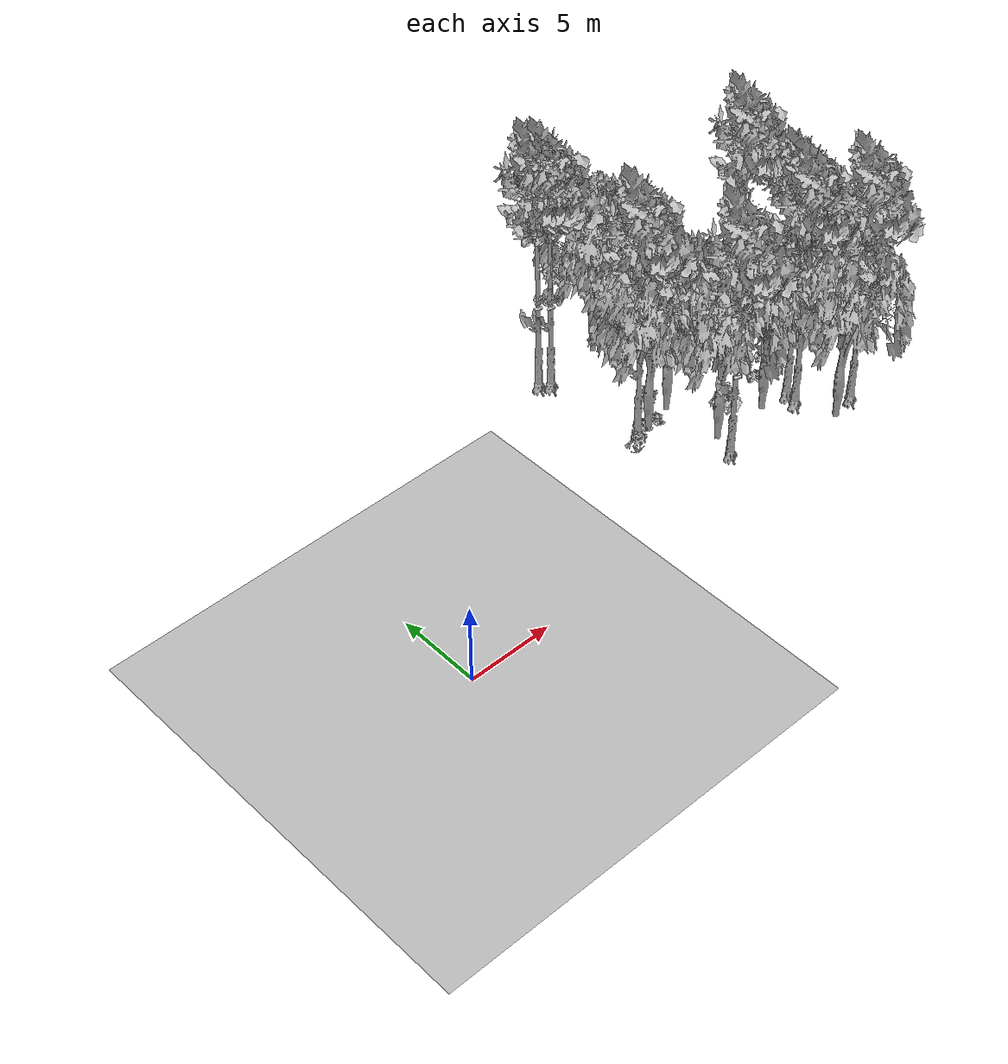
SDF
<sdf version="1.7">
 <world name="default">
  <model name="ground_plane">
   <static>1</static>
   <link name="link">
    <collision name="collision">
     <pose>-50 0 0 0 -0 0</pose>
     <geometry><plane><normal>0 0 1</normal><size>80 80</size></plane></geometry>
     <surface><contact><ode><min_depth>0.01</min_depth><max_vel>0</max_vel></ode></contact></surface>
    </collision>
    <visual name="grass">
     <cast_shadows>0</cast_shadows>
     <geometry>
      <mesh>
       <scale>0.46714285714285714 0.46714285714285714 0.1</scale>
       <uri>file://grass_plane/meshes/grass_plane.dae</uri>
      </mesh>
     </geometry>
    </visual>
   </link>
  </model>
  <model name="Tree 38">
   <static>1</static>
   <pose>26.554013058968764 2.947295487755774 0 1.57079 -0 0</pose>
   <link name="link">
    <collision name="collision">
     <geometry><mesh><scale>3.5 5 3.5</scale><uri>model://tree_9/meshes/tree_9.obj</uri></mesh></geometry>
    </collision>
    <visual name="visual">
     <geometry><mesh><scale>3.5 5 3.5</scale><uri>model://tree_9/meshes/tree_9.obj</uri></mesh></geometry>
    </visual>
   </link>
  </model>
  <model name="Tree 61">
   <static>1</static>
   <pose>21.3516521840954 13.733020760615993 0 1.57079 -0 0</pose>
   <link name="link">
    <collision name="collision">
     <geometry><mesh><scale>3.5 5 3.5</scale><uri>model://tree_2/meshes/tree_2.obj</uri></mesh></geometry>
    </collision>
    <visual name="visual">
     <geometry><mesh><scale>3.5 5 3.5</scale><uri>model://tree_2/meshes/tree_2.obj</uri></mesh></geometry>
    </visual>
   </link>
  </model>
  <model name="Tree 99">
   <static>1</static>
   <pose>21.21207955515198 3.8381988962046307 0 1.57079 -0 0</pose>
   <link name="link">
    <collision name="collision">
     <geometry><mesh><scale>3.5 5 3.5</scale><uri>model://tree_2/meshes/tree_2.obj</uri></mesh></geometry>
    </collision>
    <visual name="visual">
     <geometry><mesh><scale>3.5 5 3.5</scale><uri>model://tree_2/meshes/tree_2.obj</uri></mesh></geometry>
    </visual>
   </link>
  </model>
  <model name="Tree 119">
   <static>1</static>
   <pose>17.183807154013323 13.686100191450102 0 1.57079 -0 0</pose>
   <link name="link">
    <collision name="collision">
     <geometry><mesh><scale>3.5 5 3.5</scale><uri>model://tree_9/meshes/tree_9.obj</uri></mesh></geometry>
    </collision>
    <visual name="visual">
     <geometry><mesh><scale>3.5 5 3.5</scale><uri>model://tree_9/meshes/tree_9.obj</uri></mesh></geometry>
    </visual>
   </link>
  </model>
  <model name="Tree 136">
   <static>1</static>
   <pose>17.709669686611527 13.25297735775063 0 1.57079 -0 0</pose>
   <link name="link">
    <collision name="collision">
     <geometry><mesh><scale>3.5 5 3.5</scale><uri>model://tree_9/meshes/tree_9.obj</uri></mesh></geometry>
    </collision>
    <visual name="visual">
     <geometry><mesh><scale>3.5 5 3.5</scale><uri>model://tree_9/meshes/tree_9.obj</uri></mesh></geometry>
    </visual>
   </link>
  </model>
  <model name="Tree 258">
   <static>1</static>
   <pose>24.770784818373876 3.854841619772941 0 1.57079 -0 0</pose>
   <link name="link">
    <collision name="collision">
     <geometry><mesh><scale>3.5 5 3.5</scale><uri>model://tree_2/meshes/tree_2.obj</uri></mesh></geometry>
    </collision>
    <visual name="visual">
     <geometry><mesh><scale>3.5 5 3.5</scale><uri>model://tree_2/meshes/tree_2.obj</uri></mesh></geometry>
    </visual>
   </link>
  </model>
  <model name="Tree 326">
   <static>1</static>
   <pose>29.102540783459617 1.1148166893926685 0 1.57079 -0 0</pose>
   <link name="link">
    <collision name="collision">
     <geometry><mesh><scale>3.5 5 3.5</scale><uri>model://tree_9/meshes/tree_9.obj</uri></mesh></geometry>
    </collision>
    <visual name="visual">
     <geometry><mesh><scale>3.5 5 3.5</scale><uri>model://tree_9/meshes/tree_9.obj</uri></mesh></geometry>
    </visual>
   </link>
  </model>
  <model name="Tree 345">
   <static>1</static>
   <pose>18.86539432754026 6.826233935262081 0 1.57079 -0 0</pose>
   <link name="link">
    <collision name="collision">
     <geometry><mesh><scale>3.5 5 3.5</scale><uri>model://tree_2/meshes/tree_2.obj</uri></mesh></geometry>
    </collision>
    <visual name="visual">
     <geometry><mesh><scale>3.5 5 3.5</scale><uri>model://tree_2/meshes/tree_2.obj</uri></mesh></geometry>
    </visual>
   </link>
  </model>
  <model name="Tree 353">
   <static>1</static>
   <pose>27.264324730549333 0.6307585227398818 0 1.57079 -0 0</pose>
   <link name="link">
    <collision name="collision">
     <geometry><mesh><scale>3.5 5 3.5</scale><uri>model://tree_2/meshes/tree_2.obj</uri></mesh></geometry>
    </collision>
    <visual name="visual">
     <geometry><mesh><scale>3.5 5 3.5</scale><uri>model://tree_2/meshes/tree_2.obj</uri></mesh></geometry>
    </visual>
   </link>
  </model>
  <model name="Tree 355">
   <static>1</static>
   <pose>18.439174140930582 7.139875785383644 0 1.57079 -0 0</pose>
   <link name="link">
    <collision name="collision">
     <geometry><mesh><scale>3.5 5 3.5</scale><uri>model://tree_9/meshes/tree_9.obj</uri></mesh></geometry>
    </collision>
    <visual name="visual">
     <geometry><mesh><scale>3.5 5 3.5</scale><uri>model://tree_9/meshes/tree_9.obj</uri></mesh></geometry>
    </visual>
   </link>
  </model>
  <model name="Tree 387">
   <static>1</static>
   <pose>20.865146310311992 7.401085161220394 0 1.57079 -0 0</pose>
   <link name="link">
    <collision name="collision">
     <geometry><mesh><scale>3.5 5 3.5</scale><uri>model://tree_2/meshes/tree_2.obj</uri></mesh></geometry>
    </collision>
    <visual name="visual">
     <geometry><mesh><scale>3.5 5 3.5</scale><uri>model://tree_2/meshes/tree_2.obj</uri></mesh></geometry>
    </visual>
   </link>
  </model>
  <model name="Tree 479">
   <static>1</static>
   <pose>20.966438410773705 2.5534730129608647 0 1.57079 -0 0</pose>
   <link name="link">
    <collision name="collision">
     <geometry><mesh><scale>3.5 5 3.5</scale><uri>model://tree_9/meshes/tree_9.obj</uri></mesh></geometry>
    </collision>
    <visual name="visual">
     <geometry><mesh><scale>3.5 5 3.5</scale><uri>model://tree_9/meshes/tree_9.obj</uri></mesh></geometry>
    </visual>
   </link>
  </model>
  <model name="Tree 481">
   <static>1</static>
   <pose>21.560556599886965 11.95517404707006 0 1.57079 -0 0</pose>
   <link name="link">
    <collision name="collision">
     <geometry><mesh><scale>3.5 5 3.5</scale><uri>model://tree_2/meshes/tree_2.obj</uri></mesh></geometry>
    </collision>
    <visual name="visual">
     <geometry><mesh><scale>3.5 5 3.5</scale><uri>model://tree_2/meshes/tree_2.obj</uri></mesh></geometry>
    </visual>
   </link>
  </model>
  <model name="Tree 486">
   <static>1</static>
   <pose>28.324259847910824 9.100392271187879 0 1.57079 -0 0</pose>
   <link name="link">
    <collision name="collision">
     <geometry><mesh><scale>3.5 5 3.5</scale><uri>model://tree_9/meshes/tree_9.obj</uri></mesh></geometry>
    </collision>
    <visual name="visual">
     <geometry><mesh><scale>3.5 5 3.5</scale><uri>model://tree_9/meshes/tree_9.obj</uri></mesh></geometry>
    </visual>
   </link>
  </model>
  <model name="Tree 492">
   <static>1</static>
   <pose>26.757668934970496 3.7386118976810323 0 1.57079 -0 0</pose>
   <link name="link">
    <collision name="collision">
     <geometry><mesh><scale>3.5 5 3.5</scale><uri>model://tree_9/meshes/tree_9.obj</uri></mesh></geometry>
    </collision>
    <visual name="visual">
     <geometry><mesh><scale>3.5 5 3.5</scale><uri>model://tree_9/meshes/tree_9.obj</uri></mesh></geometry>
    </visual>
   </link>
  </model>
  <model name="Bush 49">
   <static>1</static>
   <pose>19.646690687692207 7.0463620187912 0 1.57079 -0 0</pose>
   <link name="link">
    <collision name="collision">
     <geometry><mesh><scale>2 2 2</scale><uri>model://bush_2/meshes/bush_2.obj</uri></mesh></geometry>
     <surface><contact><collide_without_contact>false</collide_without_contact></contact></surface>
    </collision>
    <visual name="visual">
     <geometry><mesh><scale>2 2 2</scale><uri>model://bush_2/meshes/bush_2.obj</uri></mesh></geometry>
    </visual>
   </link>
  </model>
  <model name="Bush 166">
   <static>1</static>
   <pose>26.77025971707765 9.287453743690193 0 1.57079 -0 0</pose>
   <link name="link">
    <collision name="collision">
     <geometry><mesh><scale>2 2 2</scale><uri>model://bush_2/meshes/bush_2.obj</uri></mesh></geometry>
     <surface><contact><collide_without_contact>false</collide_without_contact></contact></surface>
    </collision>
    <visual name="visual">
     <geometry><mesh><scale>2 2 2</scale><uri>model://bush_2/meshes/bush_2.obj</uri></mesh></geometry>
    </visual>
   </link>
  </model>
  <model name="Bush 173">
   <static>1</static>
   <pose>22.98927692979361 4.685020799167489 0 1.57079 -0 0</pose>
   <link name="link">
    <collision name="collision">
     <geometry><mesh><scale>2 2 2</scale><uri>model://bush_1/meshes/bush_1.obj</uri></mesh></geometry>
     <surface><contact><collide_without_contact>false</collide_without_contact></contact></surface>
    </collision>
    <visual name="visual">
     <geometry><mesh><scale>2 2 2</scale><uri>model://bush_1/meshes/bush_1.obj</uri></mesh></geometry>
    </visual>
   </link>
  </model>
  <model name="Bush 211">
   <static>1</static>
   <pose>25.598423568687238 10.594180076961457 0 1.57079 -0 0</pose>
   <link name="link">
    <collision name="collision">
     <geometry><mesh><scale>2 2 2</scale><uri>model://bush_2/meshes/bush_2.obj</uri></mesh></geometry>
     <surface><contact><collide_without_contact>false</collide_without_contact></contact></surface>
    </collision>
    <visual name="visual">
     <geometry><mesh><scale>2 2 2</scale><uri>model://bush_2/meshes/bush_2.obj</uri></mesh></geometry>
    </visual>
   </link>
  </model>
  <model name="Bush 281">
   <static>1</static>
   <pose>18.84480474018971 7.166560532692131 0 1.57079 -0 0</pose>
   <link name="link">
    <collision name="collision">
     <geometry><mesh><scale>2 2 2</scale><uri>model://bush_2/meshes/bush_2.obj</uri></mesh></geometry>
     <surface><contact><collide_without_contact>false</collide_without_contact></contact></surface>
    </collision>
    <visual name="visual">
     <geometry><mesh><scale>2 2 2</scale><uri>model://bush_2/meshes/bush_2.obj</uri></mesh></geometry>
    </visual>
   </link>
  </model>
  <model name="Bush 401">
   <static>1</static>
   <pose>20.210421355350867 8.078629827344258 0 1.57079 -0 0</pose>
   <link name="link">
    <collision name="collision">
     <geometry><mesh><scale>2 2 2</scale><uri>model://bush_4/meshes/bush_4.obj</uri></mesh></geometry>
     <surface><contact><collide_without_contact>false</collide_without_contact></contact></surface>
    </collision>
    <visual name="visual">
     <geometry><mesh><scale>2 2 2</scale><uri>model://bush_4/meshes/bush_4.obj</uri></mesh></geometry>
    </visual>
   </link>
  </model>
  <model name="Bush 454">
   <static>1</static>
   <pose>17.28306359626935 5.965315576153984 0 1.57079 -0 0</pose>
   <link name="link">
    <collision name="collision">
     <geometry><mesh><scale>2 2 2</scale><uri>model://bush_4/meshes/bush_4.obj</uri></mesh></geometry>
     <surface><contact><collide_without_contact>false</collide_without_contact></contact></surface>
    </collision>
    <visual name="visual">
     <geometry><mesh><scale>2 2 2</scale><uri>model://bush_4/meshes/bush_4.obj</uri></mesh></geometry>
    </visual>
   </link>
  </model>
  <model name="Bush 514">
   <static>1</static>
   <pose>26.324140713132195 5.688734354533537 0 1.57079 -0 0</pose>
   <link name="link">
    <collision name="collision">
     <geometry><mesh><scale>2 2 2</scale><uri>model://bush_2/meshes/bush_2.obj</uri></mesh></geometry>
     <surface><contact><collide_without_contact>false</collide_without_contact></contact></surface>
    </collision>
    <visual name="visual">
     <geometry><mesh><scale>2 2 2</scale><uri>model://bush_2/meshes/bush_2.obj</uri></mesh></geometry>
    </visual>
   </link>
  </model>
  <model name="Bush 585">
   <static>1</static>
   <pose>27.898475859817196 6.584034239168169 0 1.57079 -0 0</pose>
   <link name="link">
    <collision name="collision">
     <geometry><mesh><scale>2 2 2</scale><uri>model://bush_2/meshes/bush_2.obj</uri></mesh></geometry>
     <surface><contact><collide_without_contact>false</collide_without_contact></contact></surface>
    </collision>
    <visual name="visual">
     <geometry><mesh><scale>2 2 2</scale><uri>model://bush_2/meshes/bush_2.obj</uri></mesh></geometry>
    </visual>
   </link>
  </model>
 </world>
</sdf>
